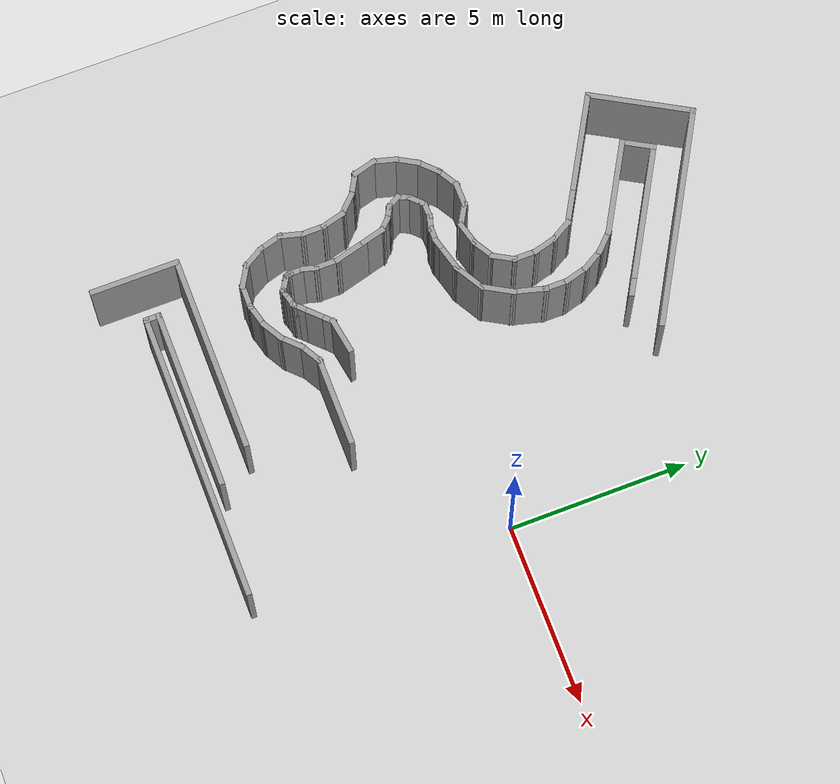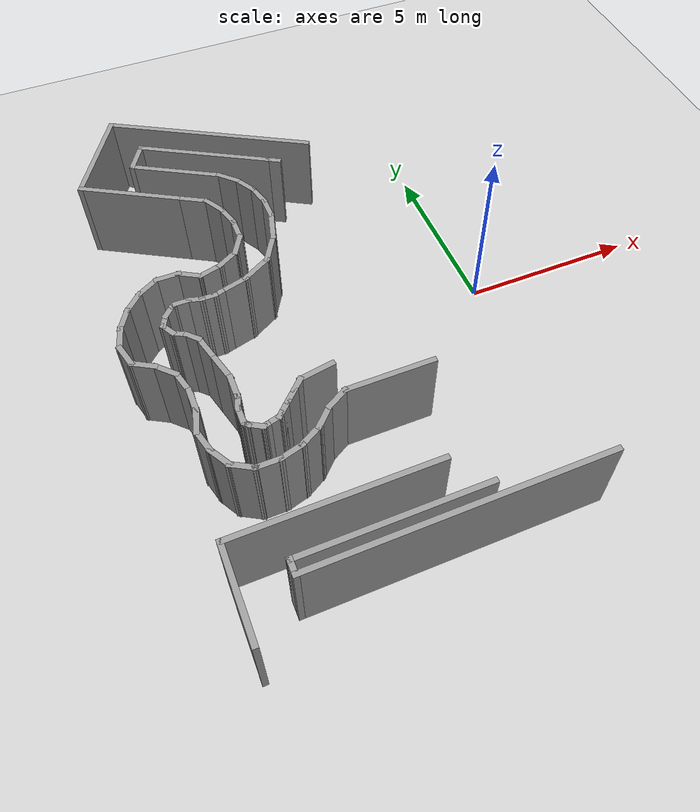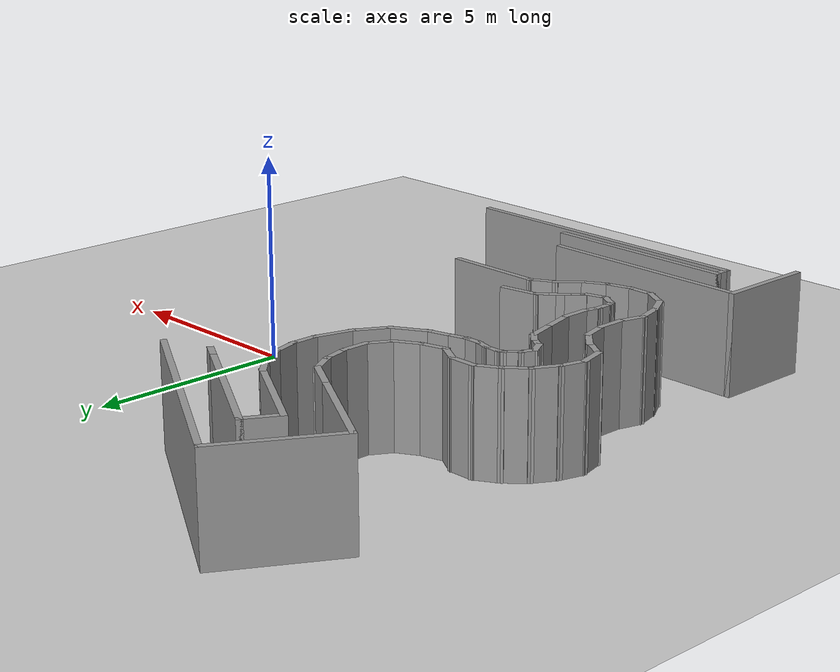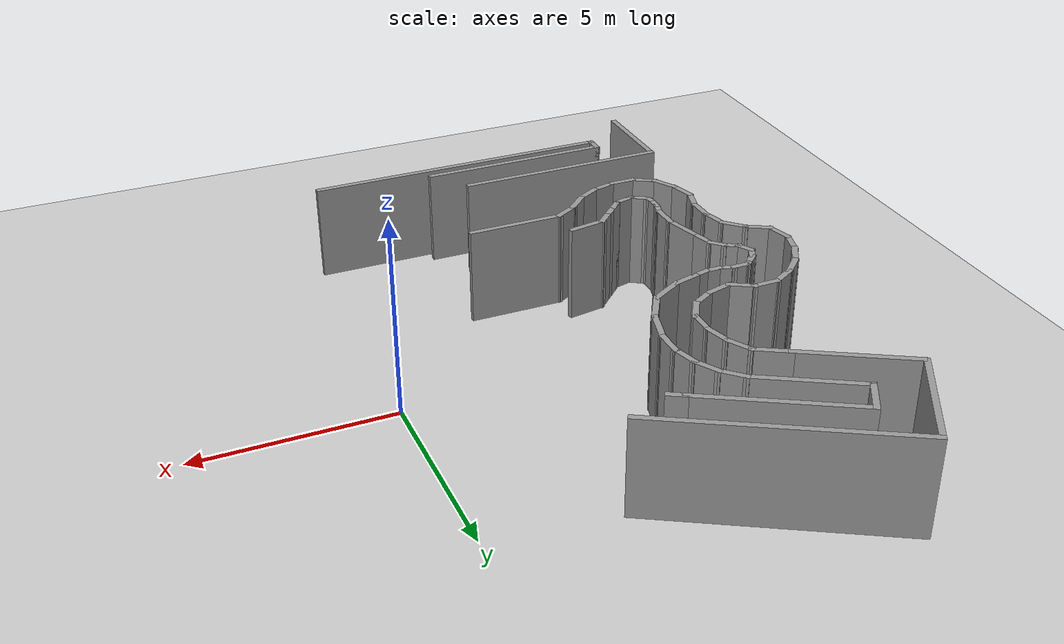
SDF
<sdf version="1.7">
 <world name="default">
  <model name="ground_plane">
   <static>1</static>
   <link name="link">
    <collision name="collision">
     <geometry><plane><normal>0 0 1</normal><size>100 100</size></plane></geometry>
     <surface><friction><ode><mu>100</mu><mu2>50</mu2></ode></friction></surface>
    </collision>
    <visual name="visual">
     <cast_shadows>0</cast_shadows>
     <geometry><plane><normal>0 0 1</normal><size>100 100</size></plane></geometry>
     <material>
      <script><uri>file://media/materials/scripts/gazebo.material</uri><name>Gazebo/Grey</name></script>
     </material>
    </visual>
   </link>
  </model>
  <model name="labirinth">
   <pose>-1.55942 0.15521 0 0 -0 0</pose>
   <link name="Wall_100">
    <collision name="Wall_100_Collision">
     <geometry><box><size>0.75 0.15 2.5</size></box></geometry>
     <pose>0 0 1.25 0 -0 0</pose>
    </collision>
    <visual name="Wall_100_Visual">
     <pose>0 0 1.25 0 -0 0</pose>
     <geometry><box><size>0.75 0.15 2.5</size></box></geometry>
     <material>
      <script><uri>file://media/materials/scripts/gazebo.material</uri><name>Gazebo/Grey</name></script>
      <ambient>1 1 1 1</ambient>
     </material>
     <meta><layer>0</layer></meta>
    </visual>
    <pose>-4.80966 2.0706 0 0 -0 1.0472</pose>
   </link>
   <link name="Wall_101">
    <collision name="Wall_101_Collision">
     <geometry><box><size>0.75 0.15 2.5</size></box></geometry>
     <pose>0 0 1.25 0 -0 0</pose>
    </collision>
    <visual name="Wall_101_Visual">
     <pose>0 0 1.25 0 -0 0</pose>
     <geometry><box><size>0.75 0.15 2.5</size></box></geometry>
     <material>
      <script><uri>file://media/materials/scripts/gazebo.material</uri><name>Gazebo/Grey</name></script>
      <ambient>1 1 1 1</ambient>
     </material>
     <meta><layer>0</layer></meta>
    </visual>
    <pose>-4.65966 2.6304 0 0 -0 1.5708</pose>
   </link>
   <link name="Wall_102">
    <collision name="Wall_102_Collision">
     <geometry><box><size>0.75 0.15 2.5</size></box></geometry>
     <pose>0 0 1.25 0 -0 0</pose>
    </collision>
    <visual name="Wall_102_Visual">
     <pose>0 0 1.25 0 -0 0</pose>
     <geometry><box><size>0.75 0.15 2.5</size></box></geometry>
     <material>
      <script><uri>file://media/materials/scripts/gazebo.material</uri><name>Gazebo/Grey</name></script>
      <ambient>1 1 1 1</ambient>
     </material>
     <meta><layer>0</layer></meta>
    </visual>
    <pose>-4.73731 3.22018 0 0 -0 1.8326</pose>
   </link>
   <link name="Wall_103">
    <collision name="Wall_103_Collision">
     <geometry><box><size>0.75 0.15 2.5</size></box></geometry>
     <pose>0 0 1.25 0 -0 0</pose>
    </collision>
    <visual name="Wall_103_Visual">
     <pose>0 0 1.25 0 -0 0</pose>
     <geometry><box><size>0.75 0.15 2.5</size></box></geometry>
     <material>
      <script><uri>file://media/materials/scripts/gazebo.material</uri><name>Gazebo/Grey</name></script>
      <ambient>1 1 1 1</ambient>
     </material>
     <meta><layer>0</layer></meta>
    </visual>
    <pose>-4.96495 3.76977 0 0 -0 2.0944</pose>
   </link>
   <link name="Wall_104">
    <collision name="Wall_104_Collision">
     <geometry><box><size>1 0.15 2.5</size></box></geometry>
     <pose>0 0 1.25 0 -0 0</pose>
    </collision>
    <visual name="Wall_104_Visual">
     <pose>0 0 1.25 0 -0 0</pose>
     <geometry><box><size>1 0.15 2.5</size></box></geometry>
     <material>
      <script><uri>file://media/materials/scripts/gazebo.material</uri><name>Gazebo/Grey</name></script>
      <ambient>1 1 1 1</ambient>
     </material>
     <meta><layer>0</layer></meta>
    </visual>
    <pose>-5.48301 4.24207 0 0 -0 2.61799</pose>
   </link>
   <link name="Wall_105">
    <collision name="Wall_105_Collision">
     <geometry><box><size>3 0.15 2.5</size></box></geometry>
     <pose>0 0 1.25 0 -0 0</pose>
    </collision>
    <visual name="Wall_105_Visual">
     <pose>0 0 1.25 0 -0 0</pose>
     <geometry><box><size>3 0.15 2.5</size></box></geometry>
     <material>
      <script><uri>file://media/materials/scripts/gazebo.material</uri><name>Gazebo/Grey</name></script>
      <ambient>1 1 1 1</ambient>
     </material>
     <meta><layer>0</layer></meta>
    </visual>
    <pose>-7.08516 5.16707 0 0 -0 2.61799</pose>
   </link>
   <link name="Wall_106">
    <collision name="Wall_106_Collision">
     <geometry><box><size>3 0.15 2.5</size></box></geometry>
     <pose>0 0 1.25 0 -0 0</pose>
    </collision>
    <visual name="Wall_106_Visual">
     <pose>0 0 1.25 0 -0 0</pose>
     <geometry><box><size>3 0.15 2.5</size></box></geometry>
     <material>
      <script><uri>file://media/materials/scripts/gazebo.material</uri><name>Gazebo/Grey</name></script>
      <ambient>1 1 1 1</ambient>
     </material>
     <meta><layer>0</layer></meta>
    </visual>
    <pose>-7.60675 7.11366 0 0 -0 1.0472</pose>
   </link>
   <link name="Wall_107">
    <collision name="Wall_107_Collision">
     <geometry><box><size>6.25 0.15 2.5</size></box></geometry>
     <pose>0 0 1.25 0 -0 0</pose>
    </collision>
    <visual name="Wall_107_Visual">
     <pose>0 0 1.25 0 -0 0</pose>
     <geometry><box><size>6.25 0.15 2.5</size></box></geometry>
     <material>
      <script><uri>file://media/materials/scripts/gazebo.material</uri><name>Gazebo/Grey</name></script>
      <ambient>1 1 1 1</ambient>
     </material>
     <meta><layer>0</layer></meta>
    </visual>
    <pose>-4.25287 6.82275 0 0 -0 -0.523599</pose>
   </link>
   <link name="Wall_118">
    <collision name="Wall_118_Collision">
     <geometry><box><size>0.5 0.15 2.5</size></box></geometry>
     <pose>0 0 1.25 0 -0 0</pose>
    </collision>
    <visual name="Wall_118_Visual">
     <pose>0 0 1.25 0 -0 0</pose>
     <geometry><box><size>0.5 0.15 2.5</size></box></geometry>
     <material>
      <script><uri>file://media/materials/scripts/gazebo.material</uri><name>Gazebo/Grey</name></script>
      <ambient>1 1 1 1</ambient>
     </material>
     <meta><layer>0</layer></meta>
    </visual>
    <pose>-2.81666 4.95185 0 0 -0 2.61799</pose>
   </link>
   <link name="Wall_119">
    <collision name="Wall_119_Collision">
     <geometry><box><size>4 0.15 2.5</size></box></geometry>
     <pose>0 0 1.25 0 -0 0</pose>
    </collision>
    <visual name="Wall_119_Visual">
     <pose>0 0 1.25 0 -0 0</pose>
     <geometry><box><size>4 0.15 2.5</size></box></geometry>
     <material>
      <script><uri>file://media/materials/scripts/gazebo.material</uri><name>Gazebo/Grey</name></script>
      <ambient>1 1 1 1</ambient>
     </material>
     <meta><layer>0</layer></meta>
    </visual>
    <pose>-4.63532 6.00185 0 0 -0 2.61799</pose>
   </link>
   <link name="Wall_120">
    <collision name="Wall_120_Collision">
     <geometry><box><size>1 0.15 2.5</size></box></geometry>
     <pose>0 0 1.25 0 -0 0</pose>
    </collision>
    <visual name="Wall_120_Visual">
     <pose>0 0 1.25 0 -0 0</pose>
     <geometry><box><size>1 0.15 2.5</size></box></geometry>
     <material>
      <script><uri>file://media/materials/scripts/gazebo.material</uri><name>Gazebo/Grey</name></script>
      <ambient>1 1 1 1</ambient>
     </material>
     <meta><layer>0</layer></meta>
    </visual>
    <pose>-6.51492 6.59629 0 0 -0 -2.0944</pose>
   </link>
   <link name="Wall_121">
    <collision name="Wall_121_Collision">
     <geometry><box><size>2.75 0.15 2.5</size></box></geometry>
     <pose>0 0 1.25 0 -0 0</pose>
    </collision>
    <visual name="Wall_121_Visual">
     <pose>0 0 1.25 0 -0 0</pose>
     <geometry><box><size>2.75 0.15 2.5</size></box></geometry>
     <material>
      <script><uri>file://media/materials/scripts/gazebo.material</uri><name>Gazebo/Grey</name></script>
      <ambient>1 1 1 1</ambient>
     </material>
     <meta><layer>0</layer></meta>
    </visual>
    <pose>-5.60158 5.57823 0 0 -0 -0.523599</pose>
   </link>
   <link name="Wall_122">
    <collision name="Wall_122_Collision">
     <geometry><box><size>0.75 0.15 2.5</size></box></geometry>
     <pose>0 0 1.25 0 -0 0</pose>
    </collision>
    <visual name="Wall_122_Visual">
     <pose>0 0 1.25 0 -0 0</pose>
     <geometry><box><size>0.75 0.15 2.5</size></box></geometry>
     <material>
      <script><uri>file://media/materials/scripts/gazebo.material</uri><name>Gazebo/Grey</name></script>
      <ambient>1 1 1 1</ambient>
     </material>
     <meta><layer>0</layer></meta>
    </visual>
    <pose>-4.26362 4.71609 0 0 -0 -0.785398</pose>
   </link>
   <link name="Wall_123">
    <collision name="Wall_123_Collision">
     <geometry><box><size>0.75 0.15 2.5</size></box></geometry>
     <pose>0 0 1.25 0 -0 0</pose>
    </collision>
    <visual name="Wall_123_Visual">
     <pose>0 0 1.25 0 -0 0</pose>
     <geometry><box><size>0.75 0.15 2.5</size></box></geometry>
     <material>
      <script><uri>file://media/materials/scripts/gazebo.material</uri><name>Gazebo/Grey</name></script>
      <ambient>1 1 1 1</ambient>
     </material>
     <meta><layer>0</layer></meta>
    </visual>
    <pose>-3.90148 4.24415 0 0 -0 -1.0472</pose>
   </link>
   <link name="Wall_124">
    <collision name="Wall_124_Collision">
     <geometry><box><size>0.75 0.15 2.5</size></box></geometry>
     <pose>0 0 1.25 0 -0 0</pose>
    </collision>
    <visual name="Wall_124_Visual">
     <pose>0 0 1.25 0 -0 0</pose>
     <geometry><box><size>0.75 0.15 2.5</size></box></geometry>
     <material>
      <script><uri>file://media/materials/scripts/gazebo.material</uri><name>Gazebo/Grey</name></script>
      <ambient>1 1 1 1</ambient>
     </material>
     <meta><layer>0</layer></meta>
    </visual>
    <pose>-3.67384 3.69457 0 0 -0 -1.309</pose>
   </link>
   <link name="Wall_125">
    <collision name="Wall_125_Collision">
     <geometry><box><size>0.75 0.15 2.5</size></box></geometry>
     <pose>0 0 1.25 0 -0 0</pose>
    </collision>
    <visual name="Wall_125_Visual">
     <pose>0 0 1.25 0 -0 0</pose>
     <geometry><box><size>0.75 0.15 2.5</size></box></geometry>
     <material>
      <script><uri>file://media/materials/scripts/gazebo.material</uri><name>Gazebo/Grey</name></script>
      <ambient>1 1 1 1</ambient>
     </material>
     <meta><layer>0</layer></meta>
    </visual>
    <pose>-3.59619 3.10479 0 0 -0 -1.5708</pose>
   </link>
   <link name="Wall_126">
    <collision name="Wall_126_Collision">
     <geometry><box><size>1 0.15 2.5</size></box></geometry>
     <pose>0 0 1.25 0 -0 0</pose>
    </collision>
    <visual name="Wall_126_Visual">
     <pose>0 0 1.25 0 -0 0</pose>
     <geometry><box><size>1 0.15 2.5</size></box></geometry>
     <material>
      <script><uri>file://media/materials/scripts/gazebo.material</uri><name>Gazebo/Grey</name></script>
      <ambient>1 1 1 1</ambient>
     </material>
     <meta><layer>0</layer></meta>
    </visual>
    <pose>-3.70619 2.39427 0 0 -0 -1.8326</pose>
   </link>
   <link name="Wall_127">
    <collision name="Wall_127_Collision">
     <geometry><box><size>1 0.15 2.5</size></box></geometry>
     <pose>0 0 1.25 0 -0 0</pose>
    </collision>
    <visual name="Wall_127_Visual">
     <pose>0 0 1.25 0 -0 0</pose>
     <geometry><box><size>1 0.15 2.5</size></box></geometry>
     <material>
      <script><uri>file://media/materials/scripts/gazebo.material</uri><name>Gazebo/Grey</name></script>
      <ambient>1 1 1 1</ambient>
     </material>
     <meta><layer>0</layer></meta>
    </visual>
    <pose>-4.02869 1.61569 0 0 -0 -2.0944</pose>
   </link>
   <link name="Wall_128">
    <collision name="Wall_128_Collision">
     <geometry><box><size>1 0.15 2.5</size></box></geometry>
     <pose>0 0 1.25 0 -0 0</pose>
    </collision>
    <visual name="Wall_128_Visual">
     <pose>0 0 1.25 0 -0 0</pose>
     <geometry><box><size>1 0.15 2.5</size></box></geometry>
     <material>
      <script><uri>file://media/materials/scripts/gazebo.material</uri><name>Gazebo/Grey</name></script>
      <ambient>1 1 1 1</ambient>
     </material>
     <meta><layer>0</layer></meta>
    </visual>
    <pose>-4.60925 1.03513 0 0 -0 -2.61799</pose>
   </link>
   <link name="Wall_129">
    <collision name="Wall_129_Collision">
     <geometry><box><size>0.75 0.15 2.5</size></box></geometry>
     <pose>0 0 1.25 0 -0 0</pose>
    </collision>
    <visual name="Wall_129_Visual">
     <pose>0 0 1.25 0 -0 0</pose>
     <geometry><box><size>0.75 0.15 2.5</size></box></geometry>
     <material>
      <script><uri>file://media/materials/scripts/gazebo.material</uri><name>Gazebo/Grey</name></script>
      <ambient>1 1 1 1</ambient>
     </material>
     <meta><layer>0</layer></meta>
    </visual>
    <pose>-5.26709 0.744986 0 0 -0 -2.87979</pose>
   </link>
   <link name="Wall_130">
    <collision name="Wall_130_Collision">
     <geometry><box><size>0.5 0.15 2.5</size></box></geometry>
     <pose>0 0 1.25 0 -0 0</pose>
    </collision>
    <visual name="Wall_130_Visual">
     <pose>0 0 1.25 0 -0 0</pose>
     <geometry><box><size>0.5 0.15 2.5</size></box></geometry>
     <material>
      <script><uri>file://media/materials/scripts/gazebo.material</uri><name>Gazebo/Grey</name></script>
      <ambient>1 1 1 1</ambient>
     </material>
     <meta><layer>0</layer></meta>
    </visual>
    <pose>-5.7259 0.622047 0 0 -0 -2.87979</pose>
   </link>
   <link name="Wall_132">
    <collision name="Wall_132_Collision">
     <geometry><box><size>0.5 0.15 2.5</size></box></geometry>
     <pose>0 0 1.25 0 -0 0</pose>
    </collision>
    <visual name="Wall_132_Visual">
     <pose>0 0 1.25 0 -0 0</pose>
     <geometry><box><size>0.5 0.15 2.5</size></box></geometry>
     <material>
      <script><uri>file://media/materials/scripts/gazebo.material</uri><name>Gazebo/Grey</name></script>
      <ambient>1 1 1 1</ambient>
     </material>
     <meta><layer>0</layer></meta>
    </visual>
    <pose>-6.06994 0.576754 0 0 -0 3.14159</pose>
   </link>
   <link name="Wall_133">
    <collision name="Wall_133_Collision">
     <geometry><box><size>0.5 0.15 2.5</size></box></geometry>
     <pose>0 0 1.25 0 -0 0</pose>
    </collision>
    <visual name="Wall_133_Visual">
     <pose>0 0 1.25 0 -0 0</pose>
     <geometry><box><size>0.5 0.15 2.5</size></box></geometry>
     <material>
      <script><uri>file://media/materials/scripts/gazebo.material</uri><name>Gazebo/Grey</name></script>
      <ambient>1 1 1 1</ambient>
     </material>
     <meta><layer>0</layer></meta>
    </visual>
    <pose>-6.41398 0.622047 0 0 -0 2.87979</pose>
   </link>
   <link name="Wall_134">
    <collision name="Wall_134_Collision">
     <geometry><box><size>0.5 0.15 2.5</size></box></geometry>
     <pose>0 0 1.25 0 -0 0</pose>
    </collision>
    <visual name="Wall_134_Visual">
     <pose>0 0 1.25 0 -0 0</pose>
     <geometry><box><size>0.5 0.15 2.5</size></box></geometry>
     <material>
      <script><uri>file://media/materials/scripts/gazebo.material</uri><name>Gazebo/Grey</name></script>
      <ambient>1 1 1 1</ambient>
     </material>
     <meta><layer>0</layer></meta>
    </visual>
    <pose>-6.75802 0.667341 0 0 -0 3.14159</pose>
   </link>
   <link name="Wall_135">
    <collision name="Wall_135_Collision">
     <geometry><box><size>0.25 0.15 2.5</size></box></geometry>
     <pose>0 0 1.25 0 -0 0</pose>
    </collision>
    <visual name="Wall_135_Visual">
     <pose>0 0 1.25 0 -0 0</pose>
     <geometry><box><size>0.25 0.15 2.5</size></box></geometry>
     <material>
      <script><uri>file://media/materials/scripts/gazebo.material</uri><name>Gazebo/Grey</name></script>
      <ambient>1 1 1 1</ambient>
     </material>
     <meta><layer>0</layer></meta>
    </visual>
    <pose>-6.97631 0.642341 0 0 -0 -2.61799</pose>
   </link>
   <link name="Wall_136">
    <collision name="Wall_136_Collision">
     <geometry><box><size>0.5 0.15 2.5</size></box></geometry>
     <pose>0 0 1.25 0 -0 0</pose>
    </collision>
    <visual name="Wall_136_Visual">
     <pose>0 0 1.25 0 -0 0</pose>
     <geometry><box><size>0.5 0.15 2.5</size></box></geometry>
     <material>
      <script><uri>file://media/materials/scripts/gazebo.material</uri><name>Gazebo/Grey</name></script>
      <ambient>1 1 1 1</ambient>
     </material>
     <meta><layer>0</layer></meta>
    </visual>
    <pose>-7.14336 0.493597 0 0 -0 -2.35619</pose>
   </link>
   <link name="Wall_137">
    <collision name="Wall_137_Collision">
     <geometry><box><size>0.469915 0.15 2.5</size></box></geometry>
     <pose>0 0 1.25 0 -0 0</pose>
    </collision>
    <visual name="Wall_137_Visual">
     <pose>0 0 1.25 0 -0 0</pose>
     <geometry><box><size>0.469915 0.15 2.5</size></box></geometry>
     <material>
      <script><uri>file://media/materials/scripts/gazebo.material</uri><name>Gazebo/Grey</name></script>
      <ambient>1 1 1 1</ambient>
     </material>
     <meta><layer>0</layer></meta>
    </visual>
    <pose>-7.33477 0.224911 0 0 -0 -2.00755</pose>
   </link>
   <link name="Wall_140">
    <collision name="Wall_140_Collision">
     <geometry><box><size>0.5 0.15 2.5</size></box></geometry>
     <pose>0 0 1.25 0 -0 0</pose>
    </collision>
    <visual name="Wall_140_Visual">
     <pose>0 0 1.25 0 -0 0</pose>
     <geometry><box><size>0.5 0.15 2.5</size></box></geometry>
     <material>
      <script><uri>file://media/materials/scripts/gazebo.material</uri><name>Gazebo/Grey</name></script>
      <ambient>1 1 1 1</ambient>
     </material>
     <meta><layer>0</layer></meta>
    </visual>
    <pose>-7.31493 -0.071585 0 0 -0 -1.0472</pose>
   </link>
   <link name="Wall_141">
    <collision name="Wall_141_Collision">
     <geometry><box><size>0.5 0.15 2.5</size></box></geometry>
     <pose>0 0 1.25 0 -0 0</pose>
    </collision>
    <visual name="Wall_141_Visual">
     <pose>0 0 1.25 0 -0 0</pose>
     <geometry><box><size>0.5 0.15 2.5</size></box></geometry>
     <material>
      <script><uri>file://media/materials/scripts/gazebo.material</uri><name>Gazebo/Grey</name></script>
      <ambient>1 1 1 1</ambient>
     </material>
     <meta><layer>0</layer></meta>
    </visual>
    <pose>-7.07587 -0.310639 0 0 -0 -0.523599</pose>
   </link>
   <link name="Wall_142">
    <collision name="Wall_142_Collision">
     <geometry><box><size>0.5 0.15 2.5</size></box></geometry>
     <pose>0 0 1.25 0 -0 0</pose>
    </collision>
    <visual name="Wall_142_Visual">
     <pose>0 0 1.25 0 -0 0</pose>
     <geometry><box><size>0.5 0.15 2.5</size></box></geometry>
     <material>
      <script><uri>file://media/materials/scripts/gazebo.material</uri><name>Gazebo/Grey</name></script>
      <ambient>1 1 1 1</ambient>
     </material>
     <meta><layer>0</layer></meta>
    </visual>
    <pose>-6.80058 -0.521883 0 0 -0 -0.785398</pose>
   </link>
   <link name="Wall_143">
    <collision name="Wall_143_Collision">
     <geometry><box><size>0.75 0.15 2.5</size></box></geometry>
     <pose>0 0 1.25 0 -0 0</pose>
    </collision>
    <visual name="Wall_143_Visual">
     <pose>0 0 1.25 0 -0 0</pose>
     <geometry><box><size>0.75 0.15 2.5</size></box></geometry>
     <material>
      <script><uri>file://media/materials/scripts/gazebo.material</uri><name>Gazebo/Grey</name></script>
      <ambient>1 1 1 1</ambient>
     </material>
     <meta><layer>0</layer></meta>
    </visual>
    <pose>-6.59919 -0.935405 0 0 -0 -1.309</pose>
   </link>
   <link name="Wall_144">
    <collision name="Wall_144_Collision">
     <geometry><box><size>1 0.15 2.5</size></box></geometry>
     <pose>0 0 1.25 0 -0 0</pose>
    </collision>
    <visual name="Wall_144_Visual">
     <pose>0 0 1.25 0 -0 0</pose>
     <geometry><box><size>1 0.15 2.5</size></box></geometry>
     <material>
      <script><uri>file://media/materials/scripts/gazebo.material</uri><name>Gazebo/Grey</name></script>
      <ambient>1 1 1 1</ambient>
     </material>
     <meta><layer>0</layer></meta>
    </visual>
    <pose>-6.41154 -1.6357 0 0 -0 -1.309</pose>
   </link>
   <link name="Wall_145">
    <collision name="Wall_145_Collision">
     <geometry><box><size>0.75 0.15 2.5</size></box></geometry>
     <pose>0 0 1.25 0 -0 0</pose>
    </collision>
    <visual name="Wall_145_Visual">
     <pose>0 0 1.25 0 -0 0</pose>
     <geometry><box><size>0.75 0.15 2.5</size></box></geometry>
     <material>
      <script><uri>file://media/materials/scripts/gazebo.material</uri><name>Gazebo/Grey</name></script>
      <ambient>1 1 1 1</ambient>
     </material>
     <meta><layer>0</layer></meta>
    </visual>
    <pose>-6.30154 -2.34622 0 0 -0 -1.5708</pose>
   </link>
   <link name="Wall_146">
    <collision name="Wall_146_Collision">
     <geometry><box><size>0.5 0.15 2.5</size></box></geometry>
     <pose>0 0 1.25 0 -0 0</pose>
    </collision>
    <visual name="Wall_146_Visual">
     <pose>0 0 1.25 0 -0 0</pose>
     <geometry><box><size>0.5 0.15 2.5</size></box></geometry>
     <material>
      <script><uri>file://media/materials/scripts/gazebo.material</uri><name>Gazebo/Grey</name></script>
      <ambient>1 1 1 1</ambient>
     </material>
     <meta><layer>0</layer></meta>
    </visual>
    <pose>-6.34684 -2.81526 0 0 -0 -1.8326</pose>
   </link>
   <link name="Wall_147">
    <collision name="Wall_147_Collision">
     <geometry><box><size>0.5 0.15 2.5</size></box></geometry>
     <pose>0 0 1.25 0 -0 0</pose>
    </collision>
    <visual name="Wall_147_Visual">
     <pose>0 0 1.25 0 -0 0</pose>
     <geometry><box><size>0.5 0.15 2.5</size></box></geometry>
     <material>
      <script><uri>file://media/materials/scripts/gazebo.material</uri><name>Gazebo/Grey</name></script>
      <ambient>1 1 1 1</ambient>
     </material>
     <meta><layer>0</layer></meta>
    </visual>
    <pose>-6.39213 -3.15929 0 0 -0 -1.5708</pose>
   </link>
   <link name="Wall_148">
    <collision name="Wall_148_Collision">
     <geometry><box><size>0.25 0.15 2.5</size></box></geometry>
     <pose>0 0 1.25 0 -0 0</pose>
    </collision>
    <visual name="Wall_148_Visual">
     <pose>0 0 1.25 0 -0 0</pose>
     <geometry><box><size>0.25 0.15 2.5</size></box></geometry>
     <material>
      <script><uri>file://media/materials/scripts/gazebo.material</uri><name>Gazebo/Grey</name></script>
      <ambient>1 1 1 1</ambient>
     </material>
     <meta><layer>0</layer></meta>
    </visual>
    <pose>-6.37919 -3.38259 0 0 -0 -1.309</pose>
   </link>
   <link name="Wall_149">
    <collision name="Wall_149_Collision">
     <geometry><box><size>0.25 0.15 2.5</size></box></geometry>
     <pose>0 0 1.25 0 -0 0</pose>
    </collision>
    <visual name="Wall_149_Visual">
     <pose>0 0 1.25 0 -0 0</pose>
     <geometry><box><size>0.25 0.15 2.5</size></box></geometry>
     <material>
      <script><uri>file://media/materials/scripts/gazebo.material</uri><name>Gazebo/Grey</name></script>
      <ambient>1 1 1 1</ambient>
     </material>
     <meta><layer>0</layer></meta>
    </visual>
    <pose>-6.33089 -3.46624 0 0 -0 -0.785398</pose>
   </link>
   <link name="Wall_150">
    <collision name="Wall_150_Collision">
     <geometry><box><size>0.5 0.15 2.5</size></box></geometry>
     <pose>0 0 1.25 0 -0 0</pose>
    </collision>
    <visual name="Wall_150_Visual">
     <pose>0 0 1.25 0 -0 0</pose>
     <geometry><box><size>0.5 0.15 2.5</size></box></geometry>
     <material>
      <script><uri>file://media/materials/scripts/gazebo.material</uri><name>Gazebo/Grey</name></script>
      <ambient>1 1 1 1</ambient>
     </material>
     <meta><layer>0</layer></meta>
    </visual>
    <pose>-6.14398 -3.5891 0 0 -0 -0.523599</pose>
   </link>
   <link name="Wall_151">
    <collision name="Wall_151_Collision">
     <geometry><box><size>0.15 0.15 2.5</size></box></geometry>
     <pose>0 0 1.25 0 -0 0</pose>
    </collision>
    <visual name="Wall_151_Visual">
     <pose>0 0 1.25 0 -0 0</pose>
     <geometry><box><size>0.15 0.15 2.5</size></box></geometry>
     <material>
      <script><uri>file://media/materials/scripts/gazebo.material</uri><name>Gazebo/Grey</name></script>
      <ambient>1 1 1 1</ambient>
     </material>
     <meta><layer>0</layer></meta>
    </visual>
    <pose>-5.99243 -3.6766 0 0 -0 0</pose>
   </link>
   <link name="Wall_152">
    <collision name="Wall_152_Collision">
     <geometry><box><size>0.25 0.15 2.5</size></box></geometry>
     <pose>0 0 1.25 0 -0 0</pose>
    </collision>
    <visual name="Wall_152_Visual">
     <pose>0 0 1.25 0 -0 0</pose>
     <geometry><box><size>0.25 0.15 2.5</size></box></geometry>
     <material>
      <script><uri>file://media/materials/scripts/gazebo.material</uri><name>Gazebo/Grey</name></script>
      <ambient>1 1 1 1</ambient>
     </material>
     <meta><layer>0</layer></meta>
    </visual>
    <pose>-5.94413 -3.66366 0 0 -0 0.261799</pose>
   </link>
   <link name="Wall_153">
    <collision name="Wall_153_Collision">
     <geometry><box><size>0.5 0.15 2.5</size></box></geometry>
     <pose>0 0 1.25 0 -0 0</pose>
    </collision>
    <visual name="Wall_153_Visual">
     <pose>0 0 1.25 0 -0 0</pose>
     <geometry><box><size>0.5 0.15 2.5</size></box></geometry>
     <material>
      <script><uri>file://media/materials/scripts/gazebo.material</uri><name>Gazebo/Grey</name></script>
      <ambient>1 1 1 1</ambient>
     </material>
     <meta><layer>0</layer></meta>
    </visual>
    <pose>-5.7268 -3.60542 0 0 -0 0.261799</pose>
   </link>
   <link name="Wall_154">
    <collision name="Wall_154_Collision">
     <geometry><box><size>0.25 0.15 2.5</size></box></geometry>
     <pose>0 0 1.25 0 -0 0</pose>
    </collision>
    <visual name="Wall_154_Visual">
     <pose>0 0 1.25 0 -0 0</pose>
     <geometry><box><size>0.25 0.15 2.5</size></box></geometry>
     <material>
      <script><uri>file://media/materials/scripts/gazebo.material</uri><name>Gazebo/Grey</name></script>
      <ambient>1 1 1 1</ambient>
     </material>
     <meta><layer>0</layer></meta>
    </visual>
    <pose>-5.52241 -3.52477 0 0 -0 0.785398</pose>
   </link>
   <link name="Wall_155">
    <collision name="Wall_155_Collision">
     <geometry><box><size>0.5 0.15 2.5</size></box></geometry>
     <pose>0 0 1.25 0 -0 0</pose>
    </collision>
    <visual name="Wall_155_Visual">
     <pose>0 0 1.25 0 -0 0</pose>
     <geometry><box><size>0.5 0.15 2.5</size></box></geometry>
     <material>
      <script><uri>file://media/materials/scripts/gazebo.material</uri><name>Gazebo/Grey</name></script>
      <ambient>1 1 1 1</ambient>
     </material>
     <meta><layer>0</layer></meta>
    </visual>
    <pose>-5.36331 -3.36567 0 0 -0 0.785398</pose>
   </link>
   <link name="Wall_156">
    <collision name="Wall_156_Collision">
     <geometry><box><size>0.5 0.15 2.5</size></box></geometry>
     <pose>0 0 1.25 0 -0 0</pose>
    </collision>
    <visual name="Wall_156_Visual">
     <pose>0 0 1.25 0 -0 0</pose>
     <geometry><box><size>0.5 0.15 2.5</size></box></geometry>
     <material>
      <script><uri>file://media/materials/scripts/gazebo.material</uri><name>Gazebo/Grey</name></script>
      <ambient>1 1 1 1</ambient>
     </material>
     <meta><layer>0</layer></meta>
    </visual>
    <pose>-5.11582 -3.11819 0 0 -0 0.785398</pose>
   </link>
   <link name="Wall_157">
    <collision name="Wall_157_Collision">
     <geometry><box><size>0.5 0.15 2.5</size></box></geometry>
     <pose>0 0 1.25 0 -0 0</pose>
    </collision>
    <visual name="Wall_157_Visual">
     <pose>0 0 1.25 0 -0 0</pose>
     <geometry><box><size>0.5 0.15 2.5</size></box></geometry>
     <material>
      <script><uri>file://media/materials/scripts/gazebo.material</uri><name>Gazebo/Grey</name></script>
      <ambient>1 1 1 1</ambient>
     </material>
     <meta><layer>0</layer></meta>
    </visual>
    <pose>-4.86834 -2.8707 0 0 -0 0.785398</pose>
   </link>
   <link name="Wall_158">
    <collision name="Wall_158_Collision">
     <geometry><box><size>1.04615 0.15 2.5</size></box></geometry>
     <pose>0 0 1.25 0 -0 0</pose>
    </collision>
    <visual name="Wall_158_Visual">
     <pose>0 0 1.25 0 -0 0</pose>
     <geometry><box><size>1.04615 0.15 2.5</size></box></geometry>
     <material>
      <script><uri>file://media/materials/scripts/gazebo.material</uri><name>Gazebo/Grey</name></script>
      <ambient>1 1 1 1</ambient>
     </material>
     <meta><layer>0</layer></meta>
    </visual>
    <pose>-4.30254 -2.67372 0 0 -0 0.164183</pose>
   </link>
   <link name="Wall_24">
    <collision name="Wall_24_Collision">
     <geometry><box><size>8 0.15 2.5</size></box></geometry>
     <pose>0 0 1.25 0 -0 0</pose>
    </collision>
    <visual name="Wall_24_Visual">
     <pose>0 0 1.25 0 -0 0</pose>
     <geometry><box><size>8 0.15 2.5</size></box></geometry>
     <material>
      <script><uri>file://media/materials/scripts/gazebo.material</uri><name>Gazebo/Grey</name></script>
      <ambient>1 1 1 1</ambient>
     </material>
     <meta><layer>0</layer></meta>
    </visual>
    <pose>-2.59661 -7.3116 0 0 -0 3.14159</pose>
   </link>
   <link name="Wall_25">
    <collision name="Wall_25_Collision">
     <geometry><box><size>0.5 0.15 2.5</size></box></geometry>
     <pose>0 0 1.25 0 -0 0</pose>
    </collision>
    <visual name="Wall_25_Visual">
     <pose>0 0 1.25 0 -0 0</pose>
     <geometry><box><size>0.5 0.15 2.5</size></box></geometry>
     <material>
      <script><uri>file://media/materials/scripts/gazebo.material</uri><name>Gazebo/Grey</name></script>
      <ambient>1 1 1 1</ambient>
     </material>
     <meta><layer>0</layer></meta>
    </visual>
    <pose>-6.52161 -7.1366 0 0 -0 1.5708</pose>
   </link>
   <link name="Wall_26">
    <collision name="Wall_26_Collision">
     <geometry><box><size>5 0.15 2.5</size></box></geometry>
     <pose>0 0 1.25 0 -0 0</pose>
    </collision>
    <visual name="Wall_26_Visual">
     <pose>0 0 1.25 0 -0 0</pose>
     <geometry><box><size>5 0.15 2.5</size></box></geometry>
     <material>
      <script><uri>file://media/materials/scripts/gazebo.material</uri><name>Gazebo/Grey</name></script>
      <ambient>1 1 1 1</ambient>
     </material>
     <meta><layer>0</layer></meta>
    </visual>
    <pose>-4.09661 -6.9616 0 0 -0 0</pose>
   </link>
   <link name="Wall_33">
    <collision name="Wall_33_Collision">
     <geometry><box><size>2.5 0.15 2.5</size></box></geometry>
     <pose>0 0 1.25 0 -0 0</pose>
    </collision>
    <visual name="Wall_33_Visual">
     <pose>0 0 1.25 0 -0 0</pose>
     <geometry><box><size>2.5 0.15 2.5</size></box></geometry>
     <material>
      <script><uri>file://media/materials/scripts/gazebo.material</uri><name>Gazebo/Grey</name></script>
      <ambient>1 1 1 1</ambient>
     </material>
     <meta><layer>0</layer></meta>
    </visual>
    <pose>-2.68549 -3.45048 0 0 -0 0</pose>
   </link>
   <link name="Wall_56">
    <collision name="Wall_56_Collision">
     <geometry><box><size>2.5 0.15 2.5</size></box></geometry>
     <pose>0 0 1.25 0 -0 0</pose>
    </collision>
    <visual name="Wall_56_Visual">
     <pose>0 0 1.25 0 -0 0</pose>
     <geometry><box><size>2.5 0.15 2.5</size></box></geometry>
     <material>
      <script><uri>file://media/materials/scripts/gazebo.material</uri><name>Gazebo/Grey</name></script>
      <ambient>1 1 1 1</ambient>
     </material>
     <meta><layer>0</layer></meta>
    </visual>
    <pose>-7.75983 -7.2002 0 0 -0 1.5708</pose>
   </link>
   <link name="Wall_57">
    <collision name="Wall_57_Collision">
     <geometry><box><size>5.5 0.15 2.5</size></box></geometry>
     <pose>0 0 1.25 0 -0 0</pose>
    </collision>
    <visual name="Wall_57_Visual">
     <pose>0 0 1.25 0 -0 0</pose>
     <geometry><box><size>5.5 0.15 2.5</size></box></geometry>
     <material>
      <script><uri>file://media/materials/scripts/gazebo.material</uri><name>Gazebo/Grey</name></script>
      <ambient>1 1 1 1</ambient>
     </material>
     <meta><layer>0</layer></meta>
    </visual>
    <pose>-5.08483 -6.0252 0 0 -0 0</pose>
   </link>
   <link name="Wall_78">
    <collision name="Wall_78_Collision">
     <geometry><box><size>0.75 0.15 2.5</size></box></geometry>
     <pose>0 0 1.25 0 -0 0</pose>
    </collision>
    <visual name="Wall_78_Visual">
     <pose>0 0 1.25 0 -0 0</pose>
     <geometry><box><size>0.75 0.15 2.5</size></box></geometry>
     <material>
      <script><uri>file://media/materials/scripts/gazebo.material</uri><name>Gazebo/Grey</name></script>
      <ambient>1 1 1 1</ambient>
     </material>
     <meta><layer>0</layer></meta>
    </visual>
    <pose>-4.1203 -3.60048 0 0 -0 -2.61799</pose>
   </link>
   <link name="Wall_79">
    <collision name="Wall_79_Collision">
     <geometry><box><size>0.75 0.15 2.5</size></box></geometry>
     <pose>0 0 1.25 0 -0 0</pose>
    </collision>
    <visual name="Wall_79_Visual">
     <pose>0 0 1.25 0 -0 0</pose>
     <geometry><box><size>0.75 0.15 2.5</size></box></geometry>
     <material>
      <script><uri>file://media/materials/scripts/gazebo.material</uri><name>Gazebo/Grey</name></script>
      <ambient>1 1 1 1</ambient>
     </material>
     <meta><layer>0</layer></meta>
    </visual>
    <pose>-4.59224 -3.96261 0 0 -0 -2.35619</pose>
   </link>
   <link name="Wall_80">
    <collision name="Wall_80_Collision">
     <geometry><box><size>0.75 0.15 2.5</size></box></geometry>
     <pose>0 0 1.25 0 -0 0</pose>
    </collision>
    <visual name="Wall_80_Visual">
     <pose>0 0 1.25 0 -0 0</pose>
     <geometry><box><size>0.75 0.15 2.5</size></box></geometry>
     <material>
      <script><uri>file://media/materials/scripts/gazebo.material</uri><name>Gazebo/Grey</name></script>
      <ambient>1 1 1 1</ambient>
     </material>
     <meta><layer>0</layer></meta>
    </visual>
    <pose>-5.06418 -4.32475 0 0 -0 -2.61799</pose>
   </link>
   <link name="Wall_81">
    <collision name="Wall_81_Collision">
     <geometry><box><size>0.75 0.15 2.5</size></box></geometry>
     <pose>0 0 1.25 0 -0 0</pose>
    </collision>
    <visual name="Wall_81_Visual">
     <pose>0 0 1.25 0 -0 0</pose>
     <geometry><box><size>0.75 0.15 2.5</size></box></geometry>
     <material>
      <script><uri>file://media/materials/scripts/gazebo.material</uri><name>Gazebo/Grey</name></script>
      <ambient>1 1 1 1</ambient>
     </material>
     <meta><layer>0</layer></meta>
    </visual>
    <pose>-5.61376 -4.55239 0 0 -0 -2.87979</pose>
   </link>
   <link name="Wall_82">
    <collision name="Wall_82_Collision">
     <geometry><box><size>0.75 0.15 2.5</size></box></geometry>
     <pose>0 0 1.25 0 -0 0</pose>
    </collision>
    <visual name="Wall_82_Visual">
     <pose>0 0 1.25 0 -0 0</pose>
     <geometry><box><size>0.75 0.15 2.5</size></box></geometry>
     <material>
      <script><uri>file://media/materials/scripts/gazebo.material</uri><name>Gazebo/Grey</name></script>
      <ambient>1 1 1 1</ambient>
     </material>
     <meta><layer>0</layer></meta>
    </visual>
    <pose>-6.20354 -4.63004 0 0 -0 3.14159</pose>
   </link>
   <link name="Wall_83">
    <collision name="Wall_83_Collision">
     <geometry><box><size>0.75 0.15 2.5</size></box></geometry>
     <pose>0 0 1.25 0 -0 0</pose>
    </collision>
    <visual name="Wall_83_Visual">
     <pose>0 0 1.25 0 -0 0</pose>
     <geometry><box><size>0.75 0.15 2.5</size></box></geometry>
     <material>
      <script><uri>file://media/materials/scripts/gazebo.material</uri><name>Gazebo/Grey</name></script>
      <ambient>1 1 1 1</ambient>
     </material>
     <meta><layer>0</layer></meta>
    </visual>
    <pose>-6.76335 -4.48004 0 0 -0 2.61799</pose>
   </link>
   <link name="Wall_84">
    <collision name="Wall_84_Collision">
     <geometry><box><size>0.75 0.15 2.5</size></box></geometry>
     <pose>0 0 1.25 0 -0 0</pose>
    </collision>
    <visual name="Wall_84_Visual">
     <pose>0 0 1.25 0 -0 0</pose>
     <geometry><box><size>0.75 0.15 2.5</size></box></geometry>
     <material>
      <script><uri>file://media/materials/scripts/gazebo.material</uri><name>Gazebo/Grey</name></script>
      <ambient>1 1 1 1</ambient>
     </material>
     <meta><layer>0</layer></meta>
    </visual>
    <pose>-7.17316 -4.07023 0 0 -0 2.0944</pose>
   </link>
   <link name="Wall_85">
    <collision name="Wall_85_Collision">
     <geometry><box><size>0.75 0.15 2.5</size></box></geometry>
     <pose>0 0 1.25 0 -0 0</pose>
    </collision>
    <visual name="Wall_85_Visual">
     <pose>0 0 1.25 0 -0 0</pose>
     <geometry><box><size>0.75 0.15 2.5</size></box></geometry>
     <material>
      <script><uri>file://media/materials/scripts/gazebo.material</uri><name>Gazebo/Grey</name></script>
      <ambient>1 1 1 1</ambient>
     </material>
     <meta><layer>0</layer></meta>
    </visual>
    <pose>-7.4008 -3.52065 0 0 -0 1.8326</pose>
   </link>
   <link name="Wall_86">
    <collision name="Wall_86_Collision">
     <geometry><box><size>0.75 0.15 2.5</size></box></geometry>
     <pose>0 0 1.25 0 -0 0</pose>
    </collision>
    <visual name="Wall_86_Visual">
     <pose>0 0 1.25 0 -0 0</pose>
     <geometry><box><size>0.75 0.15 2.5</size></box></geometry>
     <material>
      <script><uri>file://media/materials/scripts/gazebo.material</uri><name>Gazebo/Grey</name></script>
      <ambient>1 1 1 1</ambient>
     </material>
     <meta><layer>0</layer></meta>
    </visual>
    <pose>-7.4008 -2.94109 0 0 -0 1.309</pose>
   </link>
   <link name="Wall_87">
    <collision name="Wall_87_Collision">
     <geometry><box><size>0.75 0.15 2.5</size></box></geometry>
     <pose>0 0 1.25 0 -0 0</pose>
    </collision>
    <visual name="Wall_87_Visual">
     <pose>0 0 1.25 0 -0 0</pose>
     <geometry><box><size>0.75 0.15 2.5</size></box></geometry>
     <material>
      <script><uri>file://media/materials/scripts/gazebo.material</uri><name>Gazebo/Grey</name></script>
      <ambient>1 1 1 1</ambient>
     </material>
     <meta><layer>0</layer></meta>
    </visual>
    <pose>-7.32316 -2.35131 0 0 -0 1.5708</pose>
   </link>
   <link name="Wall_88">
    <collision name="Wall_88_Collision">
     <geometry><box><size>0.75 0.15 2.5</size></box></geometry>
     <pose>0 0 1.25 0 -0 0</pose>
    </collision>
    <visual name="Wall_88_Visual">
     <pose>0 0 1.25 0 -0 0</pose>
     <geometry><box><size>0.75 0.15 2.5</size></box></geometry>
     <material>
      <script><uri>file://media/materials/scripts/gazebo.material</uri><name>Gazebo/Grey</name></script>
      <ambient>1 1 1 1</ambient>
     </material>
     <meta><layer>0</layer></meta>
    </visual>
    <pose>-7.4008 -1.76153 0 0 -0 1.8326</pose>
   </link>
   <link name="Wall_89">
    <collision name="Wall_89_Collision">
     <geometry><box><size>0.75 0.15 2.5</size></box></geometry>
     <pose>0 0 1.25 0 -0 0</pose>
    </collision>
    <visual name="Wall_89_Visual">
     <pose>0 0 1.25 0 -0 0</pose>
     <geometry><box><size>0.75 0.15 2.5</size></box></geometry>
     <material>
      <script><uri>file://media/materials/scripts/gazebo.material</uri><name>Gazebo/Grey</name></script>
      <ambient>1 1 1 1</ambient>
     </material>
     <meta><layer>0</layer></meta>
    </visual>
    <pose>-7.69058 -1.25962 0 0 -0 2.35619</pose>
   </link>
   <link name="Wall_90">
    <collision name="Wall_90_Collision">
     <geometry><box><size>0.75 0.15 2.5</size></box></geometry>
     <pose>0 0 1.25 0 -0 0</pose>
    </collision>
    <visual name="Wall_90_Visual">
     <pose>0 0 1.25 0 -0 0</pose>
     <geometry><box><size>0.75 0.15 2.5</size></box></geometry>
     <material>
      <script><uri>file://media/materials/scripts/gazebo.material</uri><name>Gazebo/Grey</name></script>
      <ambient>1 1 1 1</ambient>
     </material>
     <meta><layer>0</layer></meta>
    </visual>
    <pose>-8.16252 -0.897492 0 0 -0 2.61799</pose>
   </link>
   <link name="Wall_91">
    <collision name="Wall_91_Collision">
     <geometry><box><size>0.75 0.15 2.5</size></box></geometry>
     <pose>0 0 1.25 0 -0 0</pose>
    </collision>
    <visual name="Wall_91_Visual">
     <pose>0 0 1.25 0 -0 0</pose>
     <geometry><box><size>0.75 0.15 2.5</size></box></geometry>
     <material>
      <script><uri>file://media/materials/scripts/gazebo.material</uri><name>Gazebo/Grey</name></script>
      <ambient>1 1 1 1</ambient>
     </material>
     <meta><layer>0</layer></meta>
    </visual>
    <pose>-8.49997 -0.457715 0 0 -0 1.8326</pose>
   </link>
   <link name="Wall_92">
    <collision name="Wall_92_Collision">
     <geometry><box><size>0.75 0.15 2.5</size></box></geometry>
     <pose>0 0 1.25 0 -0 0</pose>
    </collision>
    <visual name="Wall_92_Visual">
     <pose>0 0 1.25 0 -0 0</pose>
     <geometry><box><size>0.75 0.15 2.5</size></box></geometry>
     <material>
      <script><uri>file://media/materials/scripts/gazebo.material</uri><name>Gazebo/Grey</name></script>
      <ambient>1 1 1 1</ambient>
     </material>
     <meta><layer>0</layer></meta>
    </visual>
    <pose>-8.49997 0.121841 0 0 -0 1.309</pose>
   </link>
   <link name="Wall_93">
    <collision name="Wall_93_Collision">
     <geometry><box><size>0.75 0.15 2.5</size></box></geometry>
     <pose>0 0 1.25 0 -0 0</pose>
    </collision>
    <visual name="Wall_93_Visual">
     <pose>0 0 1.25 0 -0 0</pose>
     <geometry><box><size>0.75 0.15 2.5</size></box></geometry>
     <material>
      <script><uri>file://media/materials/scripts/gazebo.material</uri><name>Gazebo/Grey</name></script>
      <ambient>1 1 1 1</ambient>
     </material>
     <meta><layer>0</layer></meta>
    </visual>
    <pose>-8.27233 0.671426 0 0 -0 1.0472</pose>
   </link>
   <link name="Wall_94">
    <collision name="Wall_94_Collision">
     <geometry><box><size>0.75 0.15 2.5</size></box></geometry>
     <pose>0 0 1.25 0 -0 0</pose>
    </collision>
    <visual name="Wall_94_Visual">
     <pose>0 0 1.25 0 -0 0</pose>
     <geometry><box><size>0.75 0.15 2.5</size></box></geometry>
     <material>
      <script><uri>file://media/materials/scripts/gazebo.material</uri><name>Gazebo/Grey</name></script>
      <ambient>1 1 1 1</ambient>
     </material>
     <meta><layer>0</layer></meta>
    </visual>
    <pose>-7.9102 1.14337 0 0 -0 0.785398</pose>
   </link>
   <link name="Wall_95">
    <collision name="Wall_95_Collision">
     <geometry><box><size>0.75 0.15 2.5</size></box></geometry>
     <pose>0 0 1.25 0 -0 0</pose>
    </collision>
    <visual name="Wall_95_Visual">
     <pose>0 0 1.25 0 -0 0</pose>
     <geometry><box><size>0.75 0.15 2.5</size></box></geometry>
     <material>
      <script><uri>file://media/materials/scripts/gazebo.material</uri><name>Gazebo/Grey</name></script>
      <ambient>1 1 1 1</ambient>
     </material>
     <meta><layer>0</layer></meta>
    </visual>
    <pose>-7.43826 1.5055 0 0 -0 0.523599</pose>
   </link>
   <link name="Wall_96">
    <collision name="Wall_96_Collision">
     <geometry><box><size>0.75 0.15 2.5</size></box></geometry>
     <pose>0 0 1.25 0 -0 0</pose>
    </collision>
    <visual name="Wall_96_Visual">
     <pose>0 0 1.25 0 -0 0</pose>
     <geometry><box><size>0.75 0.15 2.5</size></box></geometry>
     <material>
      <script><uri>file://media/materials/scripts/gazebo.material</uri><name>Gazebo/Grey</name></script>
      <ambient>1 1 1 1</ambient>
     </material>
     <meta><layer>0</layer></meta>
    </visual>
    <pose>-6.87845 1.6555 0 0 -0 0</pose>
   </link>
   <link name="Wall_97">
    <collision name="Wall_97_Collision">
     <geometry><box><size>0.75 0.15 2.5</size></box></geometry>
     <pose>0 0 1.25 0 -0 0</pose>
    </collision>
    <visual name="Wall_97_Visual">
     <pose>0 0 1.25 0 -0 0</pose>
     <geometry><box><size>0.75 0.15 2.5</size></box></geometry>
     <material>
      <script><uri>file://media/materials/scripts/gazebo.material</uri><name>Gazebo/Grey</name></script>
      <ambient>1 1 1 1</ambient>
     </material>
     <meta><layer>0</layer></meta>
    </visual>
    <pose>-6.31864 1.5055 0 0 -0 -0.523599</pose>
   </link>
   <link name="Wall_98">
    <collision name="Wall_98_Collision">
     <geometry><box><size>0.75 0.15 2.5</size></box></geometry>
     <pose>0 0 1.25 0 -0 0</pose>
    </collision>
    <visual name="Wall_98_Visual">
     <pose>0 0 1.25 0 -0 0</pose>
     <geometry><box><size>0.75 0.15 2.5</size></box></geometry>
     <material>
      <script><uri>file://media/materials/scripts/gazebo.material</uri><name>Gazebo/Grey</name></script>
      <ambient>1 1 1 1</ambient>
     </material>
     <meta><layer>0</layer></meta>
    </visual>
    <pose>-5.76906 1.43314 0 0 -0 0.261799</pose>
   </link>
   <link name="Wall_99">
    <collision name="Wall_99_Collision">
     <geometry><box><size>0.75 0.15 2.5</size></box></geometry>
     <pose>0 0 1.25 0 -0 0</pose>
    </collision>
    <visual name="Wall_99_Visual">
     <pose>0 0 1.25 0 -0 0</pose>
     <geometry><box><size>0.75 0.15 2.5</size></box></geometry>
     <material>
      <script><uri>file://media/materials/scripts/gazebo.material</uri><name>Gazebo/Grey</name></script>
      <ambient>1 1 1 1</ambient>
     </material>
     <meta><layer>0</layer></meta>
    </visual>
    <pose>-5.21947 1.66079 0 0 -0 0.523599</pose>
   </link>
   <static>1</static>
  </model>
 </world>
</sdf>
